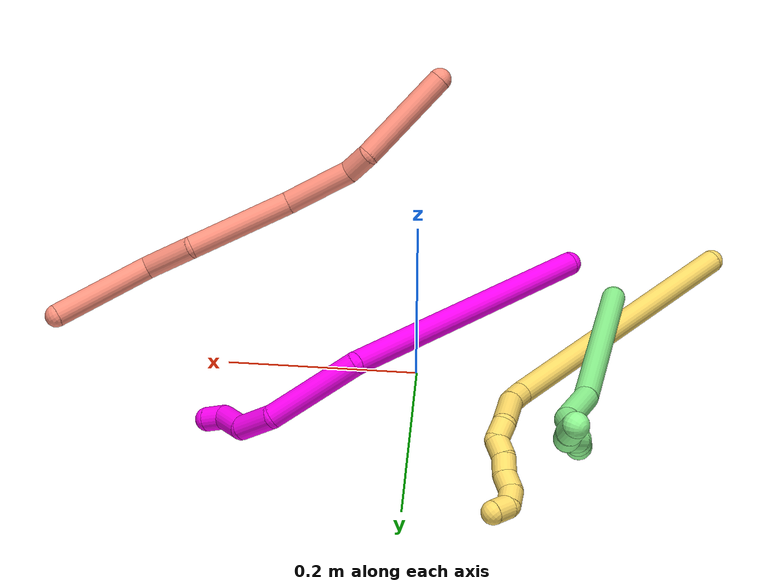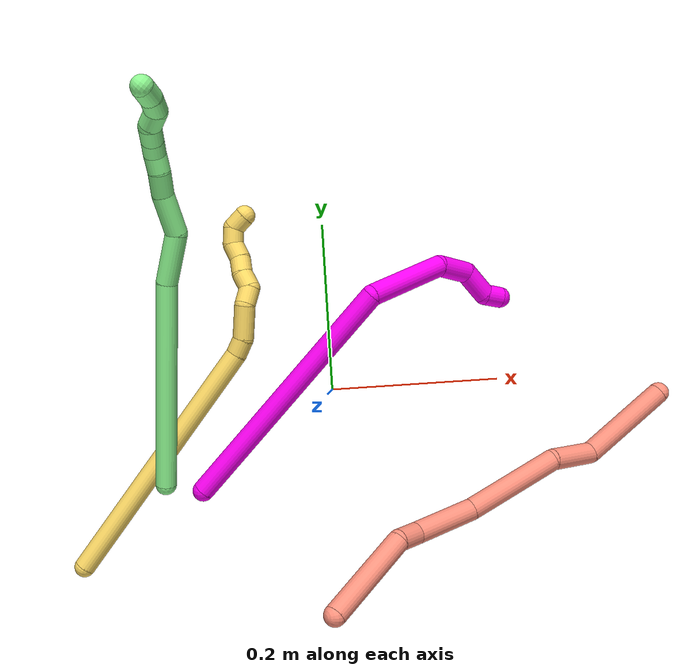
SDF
<sdf version="1.7">
 <world name="default">
  <model name="5">
   <static>0</static>
   <link name="5">
    <collision name="collision-cylinder-e_1_1_4">
     <pose>0.115959 0.107833 -0.002566 -1.59459 0.821549 -0.839115</pose>
     <geometry><cylinder><radius>0.0125</radius><length>0.31674</length></cylinder></geometry>
     <surface>
      <friction><ode><mu>1.16</mu><mu2>1.16</mu2><slip1>0</slip1><slip2>0</slip2></ode></friction>
      <contact><ode><kp>1e+06</kp><kd>1</kd><max_vel>0</max_vel><min_depth>0.001</min_depth></ode></contact>
     </surface>
    </collision>
    <visual name="visual-cylinder-e_1_1_4">
     <pose>0.115959 0.107833 -0.002566 -1.59459 0.821549 -0.839115</pose>
     <geometry><cylinder><radius>0.0125</radius><length>0.31674</length></cylinder></geometry>
     <material><ambient>1 0.858824 0.4 1</ambient></material>
    </visual>
    <collision name="collision-cylinder-e_2_4_5">
     <pose>0.237757 0.224307 -0.006322 -1.70753 0.589937 -0.670675</pose>
     <geometry><cylinder><radius>0.0125</radius><length>0.020993</length></cylinder></geometry>
     <surface>
      <friction><ode><mu>1.16</mu><mu2>1.16</mu2><slip1>0</slip1><slip2>0</slip2></ode></friction>
      <contact><ode><kp>1e+06</kp><kd>1</kd><max_vel>0</max_vel><min_depth>0.001</min_depth></ode></contact>
     </surface>
    </collision>
    <visual name="visual-cylinder-e_2_4_5">
     <pose>0.237757 0.224307 -0.006322 -1.70753 0.589937 -0.670675</pose>
     <geometry><cylinder><radius>0.0125</radius><length>0.020993</length></cylinder></geometry>
     <material><ambient>1 0.858824 0.4 1</ambient></material>
    </visual>
    <collision name="collision-cylinder-e_3_5_6">
     <pose>0.251209 0.249857 -0.016065 -2.03913 0.381995 -0.609412</pose>
     <geometry><cylinder><radius>0.0125</radius><length>0.040843</length></cylinder></geometry>
     <surface>
      <friction><ode><mu>1.16</mu><mu2>1.16</mu2><slip1>0</slip1><slip2>0</slip2></ode></friction>
      <contact><ode><kp>1e+06</kp><kd>1</kd><max_vel>0</max_vel><min_depth>0.001</min_depth></ode></contact>
     </surface>
    </collision>
    <visual name="visual-cylinder-e_3_5_6">
     <pose>0.251209 0.249857 -0.016065 -2.03913 0.381995 -0.609412</pose>
     <geometry><cylinder><radius>0.0125</radius><length>0.040843</length></cylinder></geometry>
     <material><ambient>1 0.858824 0.4 1</ambient></material>
    </visual>
    <collision name="collision-cylinder-e_4_6_7">
     <pose>0.266428 0.272384 -0.029382 -2.27418 0.801517 -1.48193</pose>
     <geometry><cylinder><radius>0.0125</radius><length>0.021177</length></cylinder></geometry>
     <surface>
      <friction><ode><mu>1.16</mu><mu2>1.16</mu2><slip1>0</slip1><slip2>0</slip2></ode></friction>
      <contact><ode><kp>1e+06</kp><kd>1</kd><max_vel>0</max_vel><min_depth>0.001</min_depth></ode></contact>
     </surface>
    </collision>
    <visual name="visual-cylinder-e_4_6_7">
     <pose>0.266428 0.272384 -0.029382 -2.27418 0.801517 -1.48193</pose>
     <geometry><cylinder><radius>0.0125</radius><length>0.021177</length></cylinder></geometry>
     <material><ambient>1 0.858824 0.4 1</ambient></material>
    </visual>
    <collision name="collision-cylinder-e_5_7_8">
     <pose>0.276132 0.28153 -0.043372 -2.77625 0.209261 -1.03382</pose>
     <geometry><cylinder><radius>0.0125</radius><length>0.020195</length></cylinder></geometry>
     <surface>
      <friction><ode><mu>1.16</mu><mu2>1.16</mu2><slip1>0</slip1><slip2>0</slip2></ode></friction>
      <contact><ode><kp>1e+06</kp><kd>1</kd><max_vel>0</max_vel><min_depth>0.001</min_depth></ode></contact>
     </surface>
    </collision>
    <visual name="visual-cylinder-e_5_7_8">
     <pose>0.276132 0.28153 -0.043372 -2.77625 0.209261 -1.03382</pose>
     <geometry><cylinder><radius>0.0125</radius><length>0.020195</length></cylinder></geometry>
     <material><ambient>1 0.858824 0.4 1</ambient></material>
    </visual>
    <collision name="collision-cylinder-e_6_8_9">
     <pose>0.283143 0.289087 -0.060352 -2.66255 0.51215 -1.64037</pose>
     <geometry><cylinder><radius>0.0125</radius><length>0.020049</length></cylinder></geometry>
     <surface>
      <friction><ode><mu>1.16</mu><mu2>1.16</mu2><slip1>0</slip1><slip2>0</slip2></ode></friction>
      <contact><ode><kp>1e+06</kp><kd>1</kd><max_vel>0</max_vel><min_depth>0.001</min_depth></ode></contact>
     </surface>
    </collision>
    <visual name="visual-cylinder-e_6_8_9">
     <pose>0.283143 0.289087 -0.060352 -2.66255 0.51215 -1.64037</pose>
     <geometry><cylinder><radius>0.0125</radius><length>0.020049</length></cylinder></geometry>
     <material><ambient>1 0.858824 0.4 1</ambient></material>
    </visual>
    <collision name="collision-cylinder-e_7_9_10">
     <pose>0.29004 0.297253 -0.076991 -2.70571 0.199784 -0.849972</pose>
     <geometry><cylinder><radius>0.0125</radius><length>0.020001</length></cylinder></geometry>
     <surface>
      <friction><ode><mu>1.16</mu><mu2>1.16</mu2><slip1>0</slip1><slip2>0</slip2></ode></friction>
      <contact><ode><kp>1e+06</kp><kd>1</kd><max_vel>0</max_vel><min_depth>0.001</min_depth></ode></contact>
     </surface>
    </collision>
    <visual name="visual-cylinder-e_7_9_10">
     <pose>0.29004 0.297253 -0.076991 -2.70571 0.199784 -0.849972</pose>
     <geometry><cylinder><radius>0.0125</radius><length>0.020001</length></cylinder></geometry>
     <material><ambient>1 0.858824 0.4 1</ambient></material>
    </visual>
    <collision name="collision-cylinder-e_8_10_11">
     <pose>0.296589 0.308491 -0.091241 -2.21787 0.473916 -0.903399</pose>
     <geometry><cylinder><radius>0.0125</radius><length>0.020002</length></cylinder></geometry>
     <surface>
      <friction><ode><mu>1.16</mu><mu2>1.16</mu2><slip1>0</slip1><slip2>0</slip2></ode></friction>
      <contact><ode><kp>1e+06</kp><kd>1</kd><max_vel>0</max_vel><min_depth>0.001</min_depth></ode></contact>
     </surface>
    </collision>
    <visual name="visual-cylinder-e_8_10_11">
     <pose>0.296589 0.308491 -0.091241 -2.21787 0.473916 -0.903399</pose>
     <geometry><cylinder><radius>0.0125</radius><length>0.020002</length></cylinder></geometry>
     <material><ambient>1 0.858824 0.4 1</ambient></material>
    </visual>
    <collision name="collision-cylinder-e_9_11_2">
     <pose>0.30794 0.322738 -0.094914 -1.33836 0.746043 -0.600337</pose>
     <geometry><cylinder><radius>0.0125</radius><length>0.020001</length></cylinder></geometry>
     <surface>
      <friction><ode><mu>1.16</mu><mu2>1.16</mu2><slip1>0</slip1><slip2>0</slip2></ode></friction>
      <contact><ode><kp>1e+06</kp><kd>1</kd><max_vel>0</max_vel><min_depth>0.001</min_depth></ode></contact>
     </surface>
    </collision>
    <visual name="visual-cylinder-e_9_11_2">
     <pose>0.30794 0.322738 -0.094914 -1.33836 0.746043 -0.600337</pose>
     <geometry><cylinder><radius>0.0125</radius><length>0.020001</length></cylinder></geometry>
     <material><ambient>1 0.858824 0.4 1</ambient></material>
    </visual>
    <collision name="collision-sphere-2">
     <pose>0.314728 0.329884 -0.093222 0 -0 0</pose>
     <geometry><sphere><radius>0.0125</radius></sphere></geometry>
     <surface>
      <friction><ode><mu>1.16</mu><mu2>1.16</mu2><slip1>0</slip1><slip2>0</slip2></ode></friction>
      <contact><ode><kp>1e+06</kp><kd>1</kd><max_vel>0</max_vel><min_depth>0.001</min_depth></ode></contact>
     </surface>
    </collision>
    <visual name="visual-sphere-2">
     <pose>0.314728 0.329884 -0.093222 0 -0 0</pose>
     <geometry><sphere><radius>0.0125</radius></sphere></geometry>
     <material><ambient>1 0.858824 0.4 1</ambient></material>
    </visual>
    <collision name="collision-sphere-11">
     <pose>0.301153 0.315591 -0.096606 0 -0 0</pose>
     <geometry><sphere><radius>0.0125</radius></sphere></geometry>
     <surface>
      <friction><ode><mu>1.16</mu><mu2>1.16</mu2><slip1>0</slip1><slip2>0</slip2></ode></friction>
      <contact><ode><kp>1e+06</kp><kd>1</kd><max_vel>0</max_vel><min_depth>0.001</min_depth></ode></contact>
     </surface>
    </collision>
    <visual name="visual-sphere-11">
     <pose>0.301153 0.315591 -0.096606 0 -0 0</pose>
     <geometry><sphere><radius>0.0125</radius></sphere></geometry>
     <material><ambient>1 0.858824 0.4 1</ambient></material>
    </visual>
    <collision name="collision-sphere-10">
     <pose>0.292025 0.301391 -0.085877 0 -0 0</pose>
     <geometry><sphere><radius>0.0125</radius></sphere></geometry>
     <surface>
      <friction><ode><mu>1.16</mu><mu2>1.16</mu2><slip1>0</slip1><slip2>0</slip2></ode></friction>
      <contact><ode><kp>1e+06</kp><kd>1</kd><max_vel>0</max_vel><min_depth>0.001</min_depth></ode></contact>
     </surface>
    </collision>
    <visual name="visual-sphere-10">
     <pose>0.292025 0.301391 -0.085877 0 -0 0</pose>
     <geometry><sphere><radius>0.0125</radius></sphere></geometry>
     <material><ambient>1 0.858824 0.4 1</ambient></material>
    </visual>
    <collision name="collision-sphere-9">
     <pose>0.288055 0.293115 -0.068106 0 -0 0</pose>
     <geometry><sphere><radius>0.0125</radius></sphere></geometry>
     <surface>
      <friction><ode><mu>1.16</mu><mu2>1.16</mu2><slip1>0</slip1><slip2>0</slip2></ode></friction>
      <contact><ode><kp>1e+06</kp><kd>1</kd><max_vel>0</max_vel><min_depth>0.001</min_depth></ode></contact>
     </surface>
    </collision>
    <visual name="visual-sphere-9">
     <pose>0.288055 0.293115 -0.068106 0 -0 0</pose>
     <geometry><sphere><radius>0.0125</radius></sphere></geometry>
     <material><ambient>1 0.858824 0.4 1</ambient></material>
    </visual>
    <collision name="collision-sphere-4">
     <pose>0.231917 0.215666 -0.005133 0 -0 0</pose>
     <geometry><sphere><radius>0.0125</radius></sphere></geometry>
     <surface>
      <friction><ode><mu>1.16</mu><mu2>1.16</mu2><slip1>0</slip1><slip2>0</slip2></ode></friction>
      <contact><ode><kp>1e+06</kp><kd>1</kd><max_vel>0</max_vel><min_depth>0.001</min_depth></ode></contact>
     </surface>
    </collision>
    <visual name="visual-sphere-4">
     <pose>0.231917 0.215666 -0.005133 0 -0 0</pose>
     <geometry><sphere><radius>0.0125</radius></sphere></geometry>
     <material><ambient>1 0.858824 0.4 1</ambient></material>
    </visual>
    <collision name="collision-sphere-1">
     <geometry><sphere><radius>0.0125</radius></sphere></geometry>
     <surface>
      <friction><ode><mu>1.16</mu><mu2>1.16</mu2><slip1>0</slip1><slip2>0</slip2></ode></friction>
      <contact><ode><kp>1e+06</kp><kd>1</kd><max_vel>0</max_vel><min_depth>0.001</min_depth></ode></contact>
     </surface>
    </collision>
    <visual name="visual-sphere-1">
     <geometry><sphere><radius>0.0125</radius></sphere></geometry>
     <material><ambient>1 0.858824 0.4 1</ambient></material>
    </visual>
    <collision name="collision-sphere-8">
     <pose>0.27823 0.285059 -0.052597 0 -0 0</pose>
     <geometry><sphere><radius>0.0125</radius></sphere></geometry>
     <surface>
      <friction><ode><mu>1.16</mu><mu2>1.16</mu2><slip1>0</slip1><slip2>0</slip2></ode></friction>
      <contact><ode><kp>1e+06</kp><kd>1</kd><max_vel>0</max_vel><min_depth>0.001</min_depth></ode></contact>
     </surface>
    </collision>
    <visual name="visual-sphere-8">
     <pose>0.27823 0.285059 -0.052597 0 -0 0</pose>
     <geometry><sphere><radius>0.0125</radius></sphere></geometry>
     <material><ambient>1 0.858824 0.4 1</ambient></material>
    </visual>
    <collision name="collision-sphere-5">
     <pose>0.243596 0.232948 -0.007511 0 -0 0</pose>
     <geometry><sphere><radius>0.0125</radius></sphere></geometry>
     <surface>
      <friction><ode><mu>1.16</mu><mu2>1.16</mu2><slip1>0</slip1><slip2>0</slip2></ode></friction>
      <contact><ode><kp>1e+06</kp><kd>1</kd><max_vel>0</max_vel><min_depth>0.001</min_depth></ode></contact>
     </surface>
    </collision>
    <visual name="visual-sphere-5">
     <pose>0.243596 0.232948 -0.007511 0 -0 0</pose>
     <geometry><sphere><radius>0.0125</radius></sphere></geometry>
     <material><ambient>1 0.858824 0.4 1</ambient></material>
    </visual>
    <collision name="collision-sphere-6">
     <pose>0.258821 0.266767 -0.024618 0 -0 0</pose>
     <geometry><sphere><radius>0.0125</radius></sphere></geometry>
     <surface>
      <friction><ode><mu>1.16</mu><mu2>1.16</mu2><slip1>0</slip1><slip2>0</slip2></ode></friction>
      <contact><ode><kp>1e+06</kp><kd>1</kd><max_vel>0</max_vel><min_depth>0.001</min_depth></ode></contact>
     </surface>
    </collision>
    <visual name="visual-sphere-6">
     <pose>0.258821 0.266767 -0.024618 0 -0 0</pose>
     <geometry><sphere><radius>0.0125</radius></sphere></geometry>
     <material><ambient>1 0.858824 0.4 1</ambient></material>
    </visual>
    <collision name="collision-sphere-7">
     <pose>0.274035 0.278001 -0.034146 0 -0 0</pose>
     <geometry><sphere><radius>0.0125</radius></sphere></geometry>
     <surface>
      <friction><ode><mu>1.16</mu><mu2>1.16</mu2><slip1>0</slip1><slip2>0</slip2></ode></friction>
      <contact><ode><kp>1e+06</kp><kd>1</kd><max_vel>0</max_vel><min_depth>0.001</min_depth></ode></contact>
     </surface>
    </collision>
    <visual name="visual-sphere-7">
     <pose>0.274035 0.278001 -0.034146 0 -0 0</pose>
     <geometry><sphere><radius>0.0125</radius></sphere></geometry>
     <material><ambient>1 0.858824 0.4 1</ambient></material>
    </visual>
    <inertial>
     <pose>0.173536 0.169778 -0.019146 0 -0 0</pose>
     <mass>0.5</mass>
     <inertia>
      <ixx>-0.000114</ixx>
      <ixy>0</ixy>
      <ixz>0</ixz>
      <iyy>7.3e-05</iyy>
      <iyz>0</iyz>
      <izz>-0.003786</izz>
     </inertia>
    </inertial>
   </link>
   <pose>-0.312127 -0.195087 0.011496 1.02958 0.611128 0.510028</pose>
  </model>
  <model name="10">
   <static>0</static>
   <link name="10">
    <collision name="collision-cylinder-e_1_1_4">
     <pose>0.082256 0.110829 0.056595 -1.09866 0.584064 -0.364006</pose>
     <geometry><cylinder><radius>0.0125</radius><length>0.298343</length></cylinder></geometry>
     <surface>
      <friction><ode><mu>1.16</mu><mu2>1.16</mu2><slip1>0</slip1><slip2>0</slip2></ode></friction>
      <contact><ode><kp>1e+06</kp><kd>1</kd><max_vel>0</max_vel><min_depth>0.001</min_depth></ode></contact>
     </surface>
    </collision>
    <visual name="visual-cylinder-e_1_1_4">
     <pose>0.082256 0.110829 0.056595 -1.09866 0.584064 -0.364006</pose>
     <geometry><cylinder><radius>0.0125</radius><length>0.298343</length></cylinder></geometry>
     <material><ambient>1 0 0.964706 1</ambient></material>
    </visual>
    <collision name="collision-cylinder-e_2_4_5">
     <pose>0.213014 0.230457 0.122052 -0.781812 1.31879 -0.618401</pose>
     <geometry><cylinder><radius>0.0125</radius><length>0.100168</length></cylinder></geometry>
     <surface>
      <friction><ode><mu>1.16</mu><mu2>1.16</mu2><slip1>0</slip1><slip2>0</slip2></ode></friction>
      <contact><ode><kp>1e+06</kp><kd>1</kd><max_vel>0</max_vel><min_depth>0.001</min_depth></ode></contact>
     </surface>
    </collision>
    <visual name="visual-cylinder-e_2_4_5">
     <pose>0.213014 0.230457 0.122052 -0.781812 1.31879 -0.618401</pose>
     <geometry><cylinder><radius>0.0125</radius><length>0.100168</length></cylinder></geometry>
     <material><ambient>1 0 0.964706 1</ambient></material>
    </visual>
    <collision name="collision-cylinder-e_3_5_6">
     <pose>0.281342 0.231797 0.135328 1.03645 1.15869 0.714118</pose>
     <geometry><cylinder><radius>0.0125</radius><length>0.043275</length></cylinder></geometry>
     <surface>
      <friction><ode><mu>1.16</mu><mu2>1.16</mu2><slip1>0</slip1><slip2>0</slip2></ode></friction>
      <contact><ode><kp>1e+06</kp><kd>1</kd><max_vel>0</max_vel><min_depth>0.001</min_depth></ode></contact>
     </surface>
    </collision>
    <visual name="visual-cylinder-e_3_5_6">
     <pose>0.281342 0.231797 0.135328 1.03645 1.15869 0.714118</pose>
     <geometry><cylinder><radius>0.0125</radius><length>0.043275</length></cylinder></geometry>
     <material><ambient>1 0 0.964706 1</ambient></material>
    </visual>
    <collision name="collision-cylinder-e_4_6_7">
     <pose>0.310271 0.210114 0.147169 1.08956 0.516007 0.317114</pose>
     <geometry><cylinder><radius>0.0125</radius><length>0.036897</length></cylinder></geometry>
     <surface>
      <friction><ode><mu>1.16</mu><mu2>1.16</mu2><slip1>0</slip1><slip2>0</slip2></ode></friction>
      <contact><ode><kp>1e+06</kp><kd>1</kd><max_vel>0</max_vel><min_depth>0.001</min_depth></ode></contact>
     </surface>
    </collision>
    <visual name="visual-cylinder-e_4_6_7">
     <pose>0.310271 0.210114 0.147169 1.08956 0.516007 0.317114</pose>
     <geometry><cylinder><radius>0.0125</radius><length>0.036897</length></cylinder></geometry>
     <material><ambient>1 0 0.964706 1</ambient></material>
    </visual>
    <collision name="collision-cylinder-e_5_7_2">
     <pose>0.328575 0.192964 0.159109 0.575391 1.04182 0.336355</pose>
     <geometry><cylinder><radius>0.0125</radius><length>0.021318</length></cylinder></geometry>
     <surface>
      <friction><ode><mu>1.16</mu><mu2>1.16</mu2><slip1>0</slip1><slip2>0</slip2></ode></friction>
      <contact><ode><kp>1e+06</kp><kd>1</kd><max_vel>0</max_vel><min_depth>0.001</min_depth></ode></contact>
     </surface>
    </collision>
    <visual name="visual-cylinder-e_5_7_2">
     <pose>0.328575 0.192964 0.159109 0.575391 1.04182 0.336355</pose>
     <geometry><cylinder><radius>0.0125</radius><length>0.021318</length></cylinder></geometry>
     <material><ambient>1 0 0.964706 1</ambient></material>
    </visual>
    <collision name="collision-sphere-2">
     <pose>0.337777 0.190036 0.163622 0 -0 0</pose>
     <geometry><sphere><radius>0.0125</radius></sphere></geometry>
     <surface>
      <friction><ode><mu>1.16</mu><mu2>1.16</mu2><slip1>0</slip1><slip2>0</slip2></ode></friction>
      <contact><ode><kp>1e+06</kp><kd>1</kd><max_vel>0</max_vel><min_depth>0.001</min_depth></ode></contact>
     </surface>
    </collision>
    <visual name="visual-sphere-2">
     <pose>0.337777 0.190036 0.163622 0 -0 0</pose>
     <geometry><sphere><radius>0.0125</radius></sphere></geometry>
     <material><ambient>1 0 0.964706 1</ambient></material>
    </visual>
    <collision name="collision-sphere-7">
     <pose>0.319373 0.195891 0.154597 0 -0 0</pose>
     <geometry><sphere><radius>0.0125</radius></sphere></geometry>
     <surface>
      <friction><ode><mu>1.16</mu><mu2>1.16</mu2><slip1>0</slip1><slip2>0</slip2></ode></friction>
      <contact><ode><kp>1e+06</kp><kd>1</kd><max_vel>0</max_vel><min_depth>0.001</min_depth></ode></contact>
     </surface>
    </collision>
    <visual name="visual-sphere-7">
     <pose>0.319373 0.195891 0.154597 0 -0 0</pose>
     <geometry><sphere><radius>0.0125</radius></sphere></geometry>
     <material><ambient>1 0 0.964706 1</ambient></material>
    </visual>
    <collision name="collision-sphere-6">
     <pose>0.301168 0.224338 0.139742 0 -0 0</pose>
     <geometry><sphere><radius>0.0125</radius></sphere></geometry>
     <surface>
      <friction><ode><mu>1.16</mu><mu2>1.16</mu2><slip1>0</slip1><slip2>0</slip2></ode></friction>
      <contact><ode><kp>1e+06</kp><kd>1</kd><max_vel>0</max_vel><min_depth>0.001</min_depth></ode></contact>
     </surface>
    </collision>
    <visual name="visual-sphere-6">
     <pose>0.301168 0.224338 0.139742 0 -0 0</pose>
     <geometry><sphere><radius>0.0125</radius></sphere></geometry>
     <material><ambient>1 0 0.964706 1</ambient></material>
    </visual>
    <collision name="collision-sphere-5">
     <pose>0.261516 0.239255 0.130914 0 -0 0</pose>
     <geometry><sphere><radius>0.0125</radius></sphere></geometry>
     <surface>
      <friction><ode><mu>1.16</mu><mu2>1.16</mu2><slip1>0</slip1><slip2>0</slip2></ode></friction>
      <contact><ode><kp>1e+06</kp><kd>1</kd><max_vel>0</max_vel><min_depth>0.001</min_depth></ode></contact>
     </surface>
    </collision>
    <visual name="visual-sphere-5">
     <pose>0.261516 0.239255 0.130914 0 -0 0</pose>
     <geometry><sphere><radius>0.0125</radius></sphere></geometry>
     <material><ambient>1 0 0.964706 1</ambient></material>
    </visual>
    <collision name="collision-sphere-1">
     <geometry><sphere><radius>0.0125</radius></sphere></geometry>
     <surface>
      <friction><ode><mu>1.16</mu><mu2>1.16</mu2><slip1>0</slip1><slip2>0</slip2></ode></friction>
      <contact><ode><kp>1e+06</kp><kd>1</kd><max_vel>0</max_vel><min_depth>0.001</min_depth></ode></contact>
     </surface>
    </collision>
    <visual name="visual-sphere-1">
     <geometry><sphere><radius>0.0125</radius></sphere></geometry>
     <material><ambient>1 0 0.964706 1</ambient></material>
    </visual>
    <collision name="collision-sphere-4">
     <pose>0.164512 0.221658 0.11319 0 -0 0</pose>
     <geometry><sphere><radius>0.0125</radius></sphere></geometry>
     <surface>
      <friction><ode><mu>1.16</mu><mu2>1.16</mu2><slip1>0</slip1><slip2>0</slip2></ode></friction>
      <contact><ode><kp>1e+06</kp><kd>1</kd><max_vel>0</max_vel><min_depth>0.001</min_depth></ode></contact>
     </surface>
    </collision>
    <visual name="visual-sphere-4">
     <pose>0.164512 0.221658 0.11319 0 -0 0</pose>
     <geometry><sphere><radius>0.0125</radius></sphere></geometry>
     <material><ambient>1 0 0.964706 1</ambient></material>
    </visual>
    <inertial>
     <pose>0.15301 0.156093 0.087577 0 -0 0</pose>
     <mass>0.5</mass>
     <inertia>
      <ixx>0.001117</ixx>
      <ixy>0</ixy>
      <ixz>0</ixz>
      <iyy>0.000778</iyy>
      <iyz>0</iyz>
      <izz>-0.002971</izz>
     </inertia>
    </inertial>
   </link>
   <pose>-0.154223 -0.105548 0.073818 0.495099 0.758579 0.295075</pose>
  </model>
  <model name="13">
   <static>0</static>
   <link name="13">
    <collision name="collision-cylinder-e_1_1_4">
     <pose>0.002705 0.098359 0.074495 -0.922593 0.021923 -0.010898</pose>
     <geometry><cylinder><radius>0.0125</radius><length>0.24683</length></cylinder></geometry>
     <surface>
      <friction><ode><mu>1.16</mu><mu2>1.16</mu2><slip1>0</slip1><slip2>0</slip2></ode></friction>
      <contact><ode><kp>1e+06</kp><kd>1</kd><max_vel>0</max_vel><min_depth>0.001</min_depth></ode></contact>
     </surface>
    </collision>
    <visual name="visual-cylinder-e_1_1_4">
     <pose>0.002705 0.098359 0.074495 -0.922593 0.021923 -0.010898</pose>
     <geometry><cylinder><radius>0.0125</radius><length>0.24683</length></cylinder></geometry>
     <material><ambient>0.564706 0.984314 0.572549 1</ambient></material>
    </visual>
    <collision name="collision-cylinder-e_2_4_5">
     <pose>0.008638 0.223091 0.162276 -1.10412 0.108833 -0.067076</pose>
     <geometry><cylinder><radius>0.0125</radius><length>0.059413</length></cylinder></geometry>
     <surface>
      <friction><ode><mu>1.16</mu><mu2>1.16</mu2><slip1>0</slip1><slip2>0</slip2></ode></friction>
      <contact><ode><kp>1e+06</kp><kd>1</kd><max_vel>0</max_vel><min_depth>0.001</min_depth></ode></contact>
     </surface>
    </collision>
    <visual name="visual-cylinder-e_2_4_5">
     <pose>0.008638 0.223091 0.162276 -1.10412 0.108833 -0.067076</pose>
     <geometry><cylinder><radius>0.0125</radius><length>0.059413</length></cylinder></geometry>
     <material><ambient>0.564706 0.984314 0.572549 1</ambient></material>
    </visual>
    <collision name="collision-cylinder-e_3_5_6">
     <pose>0.015651 0.262376 0.194492 -0.598609 0.163771 -0.050638</pose>
     <geometry><cylinder><radius>0.0125</radius><length>0.04645</length></cylinder></geometry>
     <surface>
      <friction><ode><mu>1.16</mu><mu2>1.16</mu2><slip1>0</slip1><slip2>0</slip2></ode></friction>
      <contact><ode><kp>1e+06</kp><kd>1</kd><max_vel>0</max_vel><min_depth>0.001</min_depth></ode></contact>
     </surface>
    </collision>
    <visual name="visual-cylinder-e_3_5_6">
     <pose>0.015651 0.262376 0.194492 -0.598609 0.163771 -0.050638</pose>
     <geometry><cylinder><radius>0.0125</radius><length>0.04645</length></cylinder></geometry>
     <material><ambient>0.564706 0.984314 0.572549 1</ambient></material>
    </visual>
    <collision name="collision-cylinder-e_4_6_7">
     <pose>0.023468 0.284458 0.222544 -0.787998 0.302065 -0.126375</pose>
     <geometry><cylinder><radius>0.0125</radius><length>0.027096</length></cylinder></geometry>
     <surface>
      <friction><ode><mu>1.16</mu><mu2>1.16</mu2><slip1>0</slip1><slip2>0</slip2></ode></friction>
      <contact><ode><kp>1e+06</kp><kd>1</kd><max_vel>0</max_vel><min_depth>0.001</min_depth></ode></contact>
     </surface>
    </collision>
    <visual name="visual-cylinder-e_4_6_7">
     <pose>0.023468 0.284458 0.222544 -0.787998 0.302065 -0.126375</pose>
     <geometry><cylinder><radius>0.0125</radius><length>0.027096</length></cylinder></geometry>
     <material><ambient>0.564706 0.984314 0.572549 1</ambient></material>
    </visual>
    <collision name="collision-cylinder-e_5_7_8">
     <pose>0.028936 0.299926 0.239364 -0.685734 0.143599 -0.051337</pose>
     <geometry><cylinder><radius>0.0125</radius><length>0.020097</length></cylinder></geometry>
     <surface>
      <friction><ode><mu>1.16</mu><mu2>1.16</mu2><slip1>0</slip1><slip2>0</slip2></ode></friction>
      <contact><ode><kp>1e+06</kp><kd>1</kd><max_vel>0</max_vel><min_depth>0.001</min_depth></ode></contact>
     </surface>
    </collision>
    <visual name="visual-cylinder-e_5_7_8">
     <pose>0.028936 0.299926 0.239364 -0.685734 0.143599 -0.051337</pose>
     <geometry><cylinder><radius>0.0125</radius><length>0.020097</length></cylinder></geometry>
     <material><ambient>0.564706 0.984314 0.572549 1</ambient></material>
    </visual>
    <collision name="collision-cylinder-e_6_8_9">
     <pose>0.036513 0.311895 0.252567 -0.800199 0.660338 -0.28787</pose>
     <geometry><cylinder><radius>0.0125</radius><length>0.020017</length></cylinder></geometry>
     <surface>
      <friction><ode><mu>1.16</mu><mu2>1.16</mu2><slip1>0</slip1><slip2>0</slip2></ode></friction>
      <contact><ode><kp>1e+06</kp><kd>1</kd><max_vel>0</max_vel><min_depth>0.001</min_depth></ode></contact>
     </surface>
    </collision>
    <visual name="visual-cylinder-e_6_8_9">
     <pose>0.036513 0.311895 0.252567 -0.800199 0.660338 -0.28787</pose>
     <geometry><cylinder><radius>0.0125</radius><length>0.020017</length></cylinder></geometry>
     <material><ambient>0.564706 0.984314 0.572549 1</ambient></material>
    </visual>
    <collision name="collision-cylinder-e_7_9_10">
     <pose>0.048803 0.323191 0.263623 -0.792 0.661386 -0.28511</pose>
     <geometry><cylinder><radius>0.0125</radius><length>0.020026</length></cylinder></geometry>
     <surface>
      <friction><ode><mu>1.16</mu><mu2>1.16</mu2><slip1>0</slip1><slip2>0</slip2></ode></friction>
      <contact><ode><kp>1e+06</kp><kd>1</kd><max_vel>0</max_vel><min_depth>0.001</min_depth></ode></contact>
     </surface>
    </collision>
    <visual name="visual-cylinder-e_7_9_10">
     <pose>0.048803 0.323191 0.263623 -0.792 0.661386 -0.28511</pose>
     <geometry><cylinder><radius>0.0125</radius><length>0.020026</length></cylinder></geometry>
     <material><ambient>0.564706 0.984314 0.572549 1</ambient></material>
    </visual>
    <collision name="collision-cylinder-e_8_10_11">
     <pose>0.059326 0.337582 0.271234 -1.33999 0.452048 -0.360408</pose>
     <geometry><cylinder><radius>0.0125</radius><length>0.020025</length></cylinder></geometry>
     <surface>
      <friction><ode><mu>1.16</mu><mu2>1.16</mu2><slip1>0</slip1><slip2>0</slip2></ode></friction>
      <contact><ode><kp>1e+06</kp><kd>1</kd><max_vel>0</max_vel><min_depth>0.001</min_depth></ode></contact>
     </surface>
    </collision>
    <visual name="visual-cylinder-e_8_10_11">
     <pose>0.059326 0.337582 0.271234 -1.33999 0.452048 -0.360408</pose>
     <geometry><cylinder><radius>0.0125</radius><length>0.020025</length></cylinder></geometry>
     <material><ambient>0.564706 0.984314 0.572549 1</ambient></material>
    </visual>
    <collision name="collision-cylinder-e_9_11_12">
     <pose>0.070553 0.350554 0.279251 -0.614508 0.754531 -0.250147</pose>
     <geometry><cylinder><radius>0.0125</radius><length>0.020013</length></cylinder></geometry>
     <surface>
      <friction><ode><mu>1.16</mu><mu2>1.16</mu2><slip1>0</slip1><slip2>0</slip2></ode></friction>
      <contact><ode><kp>1e+06</kp><kd>1</kd><max_vel>0</max_vel><min_depth>0.001</min_depth></ode></contact>
     </surface>
    </collision>
    <visual name="visual-cylinder-e_9_11_12">
     <pose>0.070553 0.350554 0.279251 -0.614508 0.754531 -0.250147</pose>
     <geometry><cylinder><radius>0.0125</radius><length>0.020013</length></cylinder></geometry>
     <material><ambient>0.564706 0.984314 0.572549 1</ambient></material>
    </visual>
    <collision name="collision-cylinder-e_10_12_2">
     <pose>0.084381 0.357047 0.292024 -0.324082 0.77015 -0.132322</pose>
     <geometry><cylinder><radius>0.0125</radius><length>0.020033</length></cylinder></geometry>
     <surface>
      <friction><ode><mu>1.16</mu><mu2>1.16</mu2><slip1>0</slip1><slip2>0</slip2></ode></friction>
      <contact><ode><kp>1e+06</kp><kd>1</kd><max_vel>0</max_vel><min_depth>0.001</min_depth></ode></contact>
     </surface>
    </collision>
    <visual name="visual-cylinder-e_10_12_2">
     <pose>0.084381 0.357047 0.292024 -0.324082 0.77015 -0.132322</pose>
     <geometry><cylinder><radius>0.0125</radius><length>0.020033</length></cylinder></geometry>
     <material><ambient>0.564706 0.984314 0.572549 1</ambient></material>
    </visual>
    <collision name="collision-sphere-2">
     <pose>0.091355 0.359336 0.298839 0 -0 0</pose>
     <geometry><sphere><radius>0.0125</radius></sphere></geometry>
     <surface>
      <friction><ode><mu>1.16</mu><mu2>1.16</mu2><slip1>0</slip1><slip2>0</slip2></ode></friction>
      <contact><ode><kp>1e+06</kp><kd>1</kd><max_vel>0</max_vel><min_depth>0.001</min_depth></ode></contact>
     </surface>
    </collision>
    <visual name="visual-sphere-2">
     <pose>0.091355 0.359336 0.298839 0 -0 0</pose>
     <geometry><sphere><radius>0.0125</radius></sphere></geometry>
     <material><ambient>0.564706 0.984314 0.572549 1</ambient></material>
    </visual>
    <collision name="collision-sphere-12">
     <pose>0.077407 0.354757 0.285208 0 -0 0</pose>
     <geometry><sphere><radius>0.0125</radius></sphere></geometry>
     <surface>
      <friction><ode><mu>1.16</mu><mu2>1.16</mu2><slip1>0</slip1><slip2>0</slip2></ode></friction>
      <contact><ode><kp>1e+06</kp><kd>1</kd><max_vel>0</max_vel><min_depth>0.001</min_depth></ode></contact>
     </surface>
    </collision>
    <visual name="visual-sphere-12">
     <pose>0.077407 0.354757 0.285208 0 -0 0</pose>
     <geometry><sphere><radius>0.0125</radius></sphere></geometry>
     <material><ambient>0.564706 0.984314 0.572549 1</ambient></material>
    </visual>
    <collision name="collision-sphere-11">
     <pose>0.0637 0.34635 0.273294 0 -0 0</pose>
     <geometry><sphere><radius>0.0125</radius></sphere></geometry>
     <surface>
      <friction><ode><mu>1.16</mu><mu2>1.16</mu2><slip1>0</slip1><slip2>0</slip2></ode></friction>
      <contact><ode><kp>1e+06</kp><kd>1</kd><max_vel>0</max_vel><min_depth>0.001</min_depth></ode></contact>
     </surface>
    </collision>
    <visual name="visual-sphere-11">
     <pose>0.0637 0.34635 0.273294 0 -0 0</pose>
     <geometry><sphere><radius>0.0125</radius></sphere></geometry>
     <material><ambient>0.564706 0.984314 0.572549 1</ambient></material>
    </visual>
    <collision name="collision-sphere-10">
     <pose>0.054953 0.328815 0.269174 0 -0 0</pose>
     <geometry><sphere><radius>0.0125</radius></sphere></geometry>
     <surface>
      <friction><ode><mu>1.16</mu><mu2>1.16</mu2><slip1>0</slip1><slip2>0</slip2></ode></friction>
      <contact><ode><kp>1e+06</kp><kd>1</kd><max_vel>0</max_vel><min_depth>0.001</min_depth></ode></contact>
     </surface>
    </collision>
    <visual name="visual-sphere-10">
     <pose>0.054953 0.328815 0.269174 0 -0 0</pose>
     <geometry><sphere><radius>0.0125</radius></sphere></geometry>
     <material><ambient>0.564706 0.984314 0.572549 1</ambient></material>
    </visual>
    <collision name="collision-sphere-9">
     <pose>0.042653 0.317567 0.258073 0 -0 0</pose>
     <geometry><sphere><radius>0.0125</radius></sphere></geometry>
     <surface>
      <friction><ode><mu>1.16</mu><mu2>1.16</mu2><slip1>0</slip1><slip2>0</slip2></ode></friction>
      <contact><ode><kp>1e+06</kp><kd>1</kd><max_vel>0</max_vel><min_depth>0.001</min_depth></ode></contact>
     </surface>
    </collision>
    <visual name="visual-sphere-9">
     <pose>0.042653 0.317567 0.258073 0 -0 0</pose>
     <geometry><sphere><radius>0.0125</radius></sphere></geometry>
     <material><ambient>0.564706 0.984314 0.572549 1</ambient></material>
    </visual>
    <collision name="collision-sphere-4">
     <pose>0.005411 0.196718 0.148989 0 -0 0</pose>
     <geometry><sphere><radius>0.0125</radius></sphere></geometry>
     <surface>
      <friction><ode><mu>1.16</mu><mu2>1.16</mu2><slip1>0</slip1><slip2>0</slip2></ode></friction>
      <contact><ode><kp>1e+06</kp><kd>1</kd><max_vel>0</max_vel><min_depth>0.001</min_depth></ode></contact>
     </surface>
    </collision>
    <visual name="visual-sphere-4">
     <pose>0.005411 0.196718 0.148989 0 -0 0</pose>
     <geometry><sphere><radius>0.0125</radius></sphere></geometry>
     <material><ambient>0.564706 0.984314 0.572549 1</ambient></material>
    </visual>
    <collision name="collision-sphere-1">
     <geometry><sphere><radius>0.0125</radius></sphere></geometry>
     <surface>
      <friction><ode><mu>1.16</mu><mu2>1.16</mu2><slip1>0</slip1><slip2>0</slip2></ode></friction>
      <contact><ode><kp>1e+06</kp><kd>1</kd><max_vel>0</max_vel><min_depth>0.001</min_depth></ode></contact>
     </surface>
    </collision>
    <visual name="visual-sphere-1">
     <geometry><sphere><radius>0.0125</radius></sphere></geometry>
     <material><ambient>0.564706 0.984314 0.572549 1</ambient></material>
    </visual>
    <collision name="collision-sphere-8">
     <pose>0.030374 0.306223 0.247061 0 -0 0</pose>
     <geometry><sphere><radius>0.0125</radius></sphere></geometry>
     <surface>
      <friction><ode><mu>1.16</mu><mu2>1.16</mu2><slip1>0</slip1><slip2>0</slip2></ode></friction>
      <contact><ode><kp>1e+06</kp><kd>1</kd><max_vel>0</max_vel><min_depth>0.001</min_depth></ode></contact>
     </surface>
    </collision>
    <visual name="visual-sphere-8">
     <pose>0.030374 0.306223 0.247061 0 -0 0</pose>
     <geometry><sphere><radius>0.0125</radius></sphere></geometry>
     <material><ambient>0.564706 0.984314 0.572549 1</ambient></material>
    </visual>
    <collision name="collision-sphere-5">
     <pose>0.011864 0.249464 0.175562 0 -0 0</pose>
     <geometry><sphere><radius>0.0125</radius></sphere></geometry>
     <surface>
      <friction><ode><mu>1.16</mu><mu2>1.16</mu2><slip1>0</slip1><slip2>0</slip2></ode></friction>
      <contact><ode><kp>1e+06</kp><kd>1</kd><max_vel>0</max_vel><min_depth>0.001</min_depth></ode></contact>
     </surface>
    </collision>
    <visual name="visual-sphere-5">
     <pose>0.011864 0.249464 0.175562 0 -0 0</pose>
     <geometry><sphere><radius>0.0125</radius></sphere></geometry>
     <material><ambient>0.564706 0.984314 0.572549 1</ambient></material>
    </visual>
    <collision name="collision-sphere-6">
     <pose>0.019437 0.275288 0.213422 0 -0 0</pose>
     <geometry><sphere><radius>0.0125</radius></sphere></geometry>
     <surface>
      <friction><ode><mu>1.16</mu><mu2>1.16</mu2><slip1>0</slip1><slip2>0</slip2></ode></friction>
      <contact><ode><kp>1e+06</kp><kd>1</kd><max_vel>0</max_vel><min_depth>0.001</min_depth></ode></contact>
     </surface>
    </collision>
    <visual name="visual-sphere-6">
     <pose>0.019437 0.275288 0.213422 0 -0 0</pose>
     <geometry><sphere><radius>0.0125</radius></sphere></geometry>
     <material><ambient>0.564706 0.984314 0.572549 1</ambient></material>
    </visual>
    <collision name="collision-sphere-7">
     <pose>0.027498 0.293628 0.231667 0 -0 0</pose>
     <geometry><sphere><radius>0.0125</radius></sphere></geometry>
     <surface>
      <friction><ode><mu>1.16</mu><mu2>1.16</mu2><slip1>0</slip1><slip2>0</slip2></ode></friction>
      <contact><ode><kp>1e+06</kp><kd>1</kd><max_vel>0</max_vel><min_depth>0.001</min_depth></ode></contact>
     </surface>
    </collision>
    <visual name="visual-sphere-7">
     <pose>0.027498 0.293628 0.231667 0 -0 0</pose>
     <geometry><sphere><radius>0.0125</radius></sphere></geometry>
     <material><ambient>0.564706 0.984314 0.572549 1</ambient></material>
    </visual>
    <inertial>
     <pose>0.018248 0.194198 0.150217 0 -0 0</pose>
     <mass>0.5</mass>
     <inertia>
      <ixx>0.001291</ixx>
      <ixy>0</ixy>
      <ixz>0</ixz>
      <iyy>0.000799</iyy>
      <iyz>0</iyz>
      <izz>-0.00105</izz>
     </inertia>
    </inertial>
   </link>
   <pose>-0.203929 -0.099818 0.033876 0.496377 -1.25696 -1.24303</pose>
  </model>
  <model name="16">
   <static>0</static>
   <link name="16">
    <collision name="collision-cylinder-e_1_1_4">
     <pose>0.005797 0.028348 -0.047384 -2.60244 0.104611 -0.37452</pose>
     <geometry><cylinder><radius>0.0125</radius><length>0.111039</length></cylinder></geometry>
     <surface>
      <friction><ode><mu>1.16</mu><mu2>1.16</mu2><slip1>0</slip1><slip2>0</slip2></ode></friction>
      <contact><ode><kp>1e+06</kp><kd>1</kd><max_vel>0</max_vel><min_depth>0.001</min_depth></ode></contact>
     </surface>
    </collision>
    <visual name="visual-cylinder-e_1_1_4">
     <pose>0.005797 0.028348 -0.047384 -2.60244 0.104611 -0.37452</pose>
     <geometry><cylinder><radius>0.0125</radius><length>0.111039</length></cylinder></geometry>
     <material><ambient>1 0.576471 0.494118 1</ambient></material>
    </visual>
    <collision name="collision-cylinder-e_2_4_5">
     <pose>0.009192 0.05794 -0.109552 -3.05768 -0.160553 2.17969</pose>
     <geometry><cylinder><radius>0.0125</radius><length>0.03006</length></cylinder></geometry>
     <surface>
      <friction><ode><mu>1.16</mu><mu2>1.16</mu2><slip1>0</slip1><slip2>0</slip2></ode></friction>
      <contact><ode><kp>1e+06</kp><kd>1</kd><max_vel>0</max_vel><min_depth>0.001</min_depth></ode></contact>
     </surface>
    </collision>
    <visual name="visual-cylinder-e_2_4_5">
     <pose>0.009192 0.05794 -0.109552 -3.05768 -0.160553 2.17969</pose>
     <geometry><cylinder><radius>0.0125</radius><length>0.03006</length></cylinder></geometry>
     <material><ambient>1 0.576471 0.494118 1</ambient></material>
    </visual>
    <collision name="collision-cylinder-e_3_5_6">
     <pose>0.014651 0.064214 -0.160563 -3.00362 0.211747 -1.98855</pose>
     <geometry><cylinder><radius>0.0125</radius><length>0.074819</length></cylinder></geometry>
     <surface>
      <friction><ode><mu>1.16</mu><mu2>1.16</mu2><slip1>0</slip1><slip2>0</slip2></ode></friction>
      <contact><ode><kp>1e+06</kp><kd>1</kd><max_vel>0</max_vel><min_depth>0.001</min_depth></ode></contact>
     </surface>
    </collision>
    <visual name="visual-cylinder-e_3_5_6">
     <pose>0.014651 0.064214 -0.160563 -3.00362 0.211747 -1.98855</pose>
     <geometry><cylinder><radius>0.0125</radius><length>0.074819</length></cylinder></geometry>
     <material><ambient>1 0.576471 0.494118 1</ambient></material>
    </visual>
    <collision name="collision-cylinder-e_4_6_7">
     <pose>0.045255 0.08499 -0.246972 -2.83756 0.408105 -1.86703</pose>
     <geometry><cylinder><radius>0.0125</radius><length>0.114603</length></cylinder></geometry>
     <surface>
      <friction><ode><mu>1.16</mu><mu2>1.16</mu2><slip1>0</slip1><slip2>0</slip2></ode></friction>
      <contact><ode><kp>1e+06</kp><kd>1</kd><max_vel>0</max_vel><min_depth>0.001</min_depth></ode></contact>
     </surface>
    </collision>
    <visual name="visual-cylinder-e_4_6_7">
     <pose>0.045255 0.08499 -0.246972 -2.83756 0.408105 -1.86703</pose>
     <geometry><cylinder><radius>0.0125</radius><length>0.114603</length></cylinder></geometry>
     <material><ambient>1 0.576471 0.494118 1</ambient></material>
    </visual>
    <collision name="collision-cylinder-e_5_7_8">
     <pose>0.070586 0.099449 -0.325929 3.09693 0.089685 2.21788</pose>
     <geometry><cylinder><radius>0.0125</radius><length>0.057837</length></cylinder></geometry>
     <surface>
      <friction><ode><mu>1.16</mu><mu2>1.16</mu2><slip1>0</slip1><slip2>0</slip2></ode></friction>
      <contact><ode><kp>1e+06</kp><kd>1</kd><max_vel>0</max_vel><min_depth>0.001</min_depth></ode></contact>
     </surface>
    </collision>
    <visual name="visual-cylinder-e_5_7_8">
     <pose>0.070586 0.099449 -0.325929 3.09693 0.089685 2.21788</pose>
     <geometry><cylinder><radius>0.0125</radius><length>0.057837</length></cylinder></geometry>
     <material><ambient>1 0.576471 0.494118 1</ambient></material>
    </visual>
    <collision name="collision-cylinder-e_6_8_2">
     <pose>0.099298 0.122477 -0.397627 -2.62621 0.486972 -1.51168</pose>
     <geometry><cylinder><radius>0.0125</radius><length>0.111641</length></cylinder></geometry>
     <surface>
      <friction><ode><mu>1.16</mu><mu2>1.16</mu2><slip1>0</slip1><slip2>0</slip2></ode></friction>
      <contact><ode><kp>1e+06</kp><kd>1</kd><max_vel>0</max_vel><min_depth>0.001</min_depth></ode></contact>
     </surface>
    </collision>
    <visual name="visual-cylinder-e_6_8_2">
     <pose>0.099298 0.122477 -0.397627 -2.62621 0.486972 -1.51168</pose>
     <geometry><cylinder><radius>0.0125</radius><length>0.111641</length></cylinder></geometry>
     <material><ambient>1 0.576471 0.494118 1</ambient></material>
    </visual>
    <collision name="collision-sphere-2">
     <pose>0.125419 0.146791 -0.440551 0 -0 0</pose>
     <geometry><sphere><radius>0.0125</radius></sphere></geometry>
     <surface>
      <friction><ode><mu>1.16</mu><mu2>1.16</mu2><slip1>0</slip1><slip2>0</slip2></ode></friction>
      <contact><ode><kp>1e+06</kp><kd>1</kd><max_vel>0</max_vel><min_depth>0.001</min_depth></ode></contact>
     </surface>
    </collision>
    <visual name="visual-sphere-2">
     <pose>0.125419 0.146791 -0.440551 0 -0 0</pose>
     <geometry><sphere><radius>0.0125</radius></sphere></geometry>
     <material><ambient>1 0.576471 0.494118 1</ambient></material>
    </visual>
    <collision name="collision-sphere-4">
     <pose>0.011595 0.056697 -0.094767 0 -0 0</pose>
     <geometry><sphere><radius>0.0125</radius></sphere></geometry>
     <surface>
      <friction><ode><mu>1.16</mu><mu2>1.16</mu2><slip1>0</slip1><slip2>0</slip2></ode></friction>
      <contact><ode><kp>1e+06</kp><kd>1</kd><max_vel>0</max_vel><min_depth>0.001</min_depth></ode></contact>
     </surface>
    </collision>
    <visual name="visual-sphere-4">
     <pose>0.011595 0.056697 -0.094767 0 -0 0</pose>
     <geometry><sphere><radius>0.0125</radius></sphere></geometry>
     <material><ambient>1 0.576471 0.494118 1</ambient></material>
    </visual>
    <collision name="collision-sphere-1">
     <geometry><sphere><radius>0.0125</radius></sphere></geometry>
     <surface>
      <friction><ode><mu>1.16</mu><mu2>1.16</mu2><slip1>0</slip1><slip2>0</slip2></ode></friction>
      <contact><ode><kp>1e+06</kp><kd>1</kd><max_vel>0</max_vel><min_depth>0.001</min_depth></ode></contact>
     </surface>
    </collision>
    <visual name="visual-sphere-1">
     <geometry><sphere><radius>0.0125</radius></sphere></geometry>
     <material><ambient>1 0.576471 0.494118 1</ambient></material>
    </visual>
    <collision name="collision-sphere-8">
     <pose>0.073176 0.098163 -0.354703 0 -0 0</pose>
     <geometry><sphere><radius>0.0125</radius></sphere></geometry>
     <surface>
      <friction><ode><mu>1.16</mu><mu2>1.16</mu2><slip1>0</slip1><slip2>0</slip2></ode></friction>
      <contact><ode><kp>1e+06</kp><kd>1</kd><max_vel>0</max_vel><min_depth>0.001</min_depth></ode></contact>
     </surface>
    </collision>
    <visual name="visual-sphere-8">
     <pose>0.073176 0.098163 -0.354703 0 -0 0</pose>
     <geometry><sphere><radius>0.0125</radius></sphere></geometry>
     <material><ambient>1 0.576471 0.494118 1</ambient></material>
    </visual>
    <collision name="collision-sphere-5">
     <pose>0.006789 0.059184 -0.124336 0 -0 0</pose>
     <geometry><sphere><radius>0.0125</radius></sphere></geometry>
     <surface>
      <friction><ode><mu>1.16</mu><mu2>1.16</mu2><slip1>0</slip1><slip2>0</slip2></ode></friction>
      <contact><ode><kp>1e+06</kp><kd>1</kd><max_vel>0</max_vel><min_depth>0.001</min_depth></ode></contact>
     </surface>
    </collision>
    <visual name="visual-sphere-5">
     <pose>0.006789 0.059184 -0.124336 0 -0 0</pose>
     <geometry><sphere><radius>0.0125</radius></sphere></geometry>
     <material><ambient>1 0.576471 0.494118 1</ambient></material>
    </visual>
    <collision name="collision-sphere-6">
     <pose>0.022514 0.069244 -0.196789 0 -0 0</pose>
     <geometry><sphere><radius>0.0125</radius></sphere></geometry>
     <surface>
      <friction><ode><mu>1.16</mu><mu2>1.16</mu2><slip1>0</slip1><slip2>0</slip2></ode></friction>
      <contact><ode><kp>1e+06</kp><kd>1</kd><max_vel>0</max_vel><min_depth>0.001</min_depth></ode></contact>
     </surface>
    </collision>
    <visual name="visual-sphere-6">
     <pose>0.022514 0.069244 -0.196789 0 -0 0</pose>
     <geometry><sphere><radius>0.0125</radius></sphere></geometry>
     <material><ambient>1 0.576471 0.494118 1</ambient></material>
    </visual>
    <collision name="collision-sphere-7">
     <pose>0.067996 0.100735 -0.297156 0 -0 0</pose>
     <geometry><sphere><radius>0.0125</radius></sphere></geometry>
     <surface>
      <friction><ode><mu>1.16</mu><mu2>1.16</mu2><slip1>0</slip1><slip2>0</slip2></ode></friction>
      <contact><ode><kp>1e+06</kp><kd>1</kd><max_vel>0</max_vel><min_depth>0.001</min_depth></ode></contact>
     </surface>
    </collision>
    <visual name="visual-sphere-7">
     <pose>0.067996 0.100735 -0.297156 0 -0 0</pose>
     <geometry><sphere><radius>0.0125</radius></sphere></geometry>
     <material><ambient>1 0.576471 0.494118 1</ambient></material>
    </visual>
    <inertial>
     <pose>0.044742 0.077719 -0.224228 0 -0 0</pose>
     <mass>0.5</mass>
     <inertia>
      <ixx>-0.000217</ixx>
      <ixy>0</ixy>
      <ixz>0</ixz>
      <iyy>-0.000259</iyy>
      <iyz>0</iyz>
      <izz>-0.000317</izz>
     </inertia>
    </inertial>
   </link>
   <pose>-0.005736 -0.226297 0.218689 -0.244586 -0.895366 0.384481</pose>
  </model>
 </world>
</sdf>
